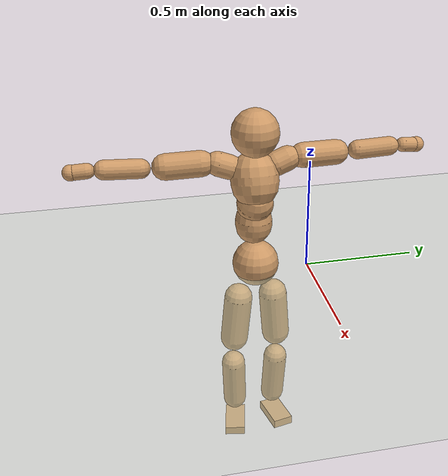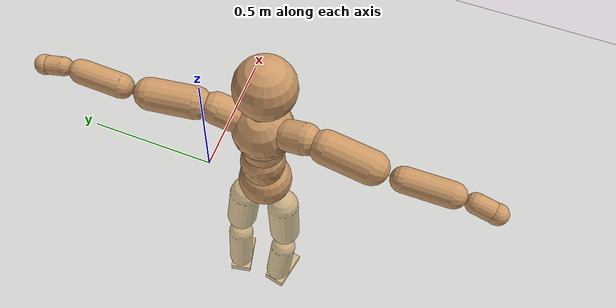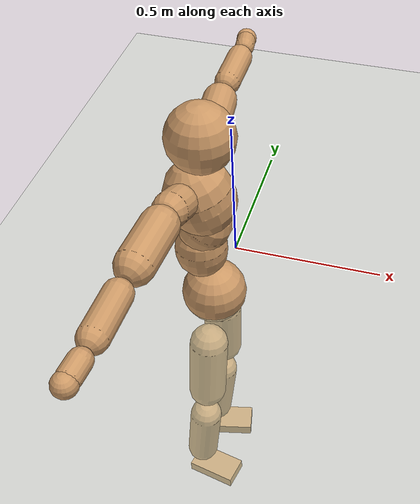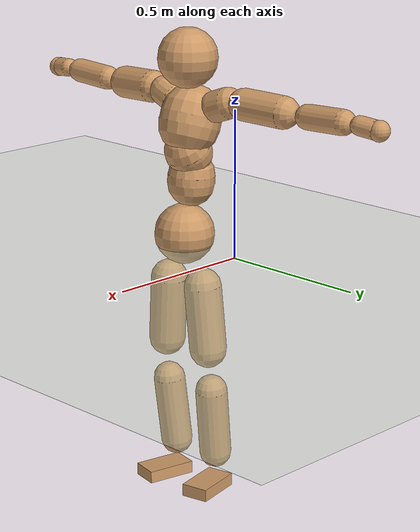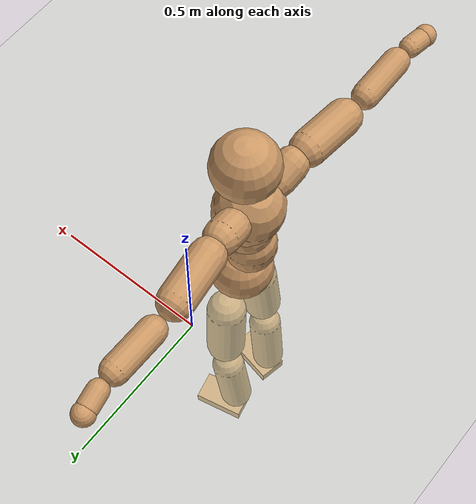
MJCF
<mujoco model="humanoid">
  <compiler coordinate="local"/>
  <default>
    <joint damping="0.0" armature="0.01" stiffness="0.0" limited="true"/>
    <geom conaffinity="1" condim="3" contype="7" margin="0.001" rgba="0.8 0.6 .4 1"/>
  </default>
  <asset>
    <texture type="skybox" builtin="gradient" rgb1=".4 .5 .6" rgb2="0 0 0" width="100" height="100"/>
    <texture builtin="flat" height="1278" mark="cross" markrgb="1 1 1" name="texgeom" random="0.01" rgb1="0.8 0.6 0.4" rgb2="0.8 0.6 0.4" type="cube" width="127"/>
    <texture builtin="checker" height="100" name="texplane" rgb1="0 0 0" rgb2="0.8 0.8 0.8" type="2d" width="100"/>
    <material name="MatPlane" reflectance="0.5" shininess="1" specular="1" texrepeat="60 60" texture="texplane"/>
    <material name="geom" texture="texgeom" texuniform="true"/>
  </asset>
  <worldbody>
    <light cutoff="100" diffuse="1 1 1" dir="-0 0 -1.3" directional="true" exponent="1" pos="0 0 1.3" specular=".1 .1 .1"/>
    <geom conaffinity="1" condim="3" name="floor" pos="0 0 0" rgba="0.8 0.9 0.8 1" size="100 100 .2" type="plane" material="MatPlane"/>
    <body name="Pelvis" pos="-0.0009 -0.2382 0.0384">
      <freejoint name="Pelvis"/>
      <geom type="sphere" contype="1" conaffinity="1" density="500" size="0.1036" pos="0.0000 0.0000 0.0000" name="Pelvis"/>
      <body name="L_Hip" pos="-0.0027 0.0761 -0.098">
        <joint name="L_Hip_x" type="hinge" pos="0 0 0" axis="1 0 0" stiffness="800" damping="80" armature="0.02" range="-180.0000 180.0000"/>
        <joint name="L_Hip_y" type="hinge" pos="0 0 0" axis="0 1 0" stiffness="800" damping="80" armature="0.02" range="-180.0000 180.0000"/>
        <joint name="L_Hip_z" type="hinge" pos="0 0 0" axis="0 0 1" stiffness="800" damping="80" armature="0.02" range="-180.0000 180.0000"/>
        <geom type="capsule" contype="1" conaffinity="1" density="500" fromto="-0.0028 0.0058 -0.0749 -0.0112 0.0233 -0.2994" size="0.0642" name="L_Hip"/>
        <body name="L_Knee" pos="-0.0141 0.0291 -0.3743">
          <joint name="L_Knee_x" type="hinge" pos="0 0 0" axis="1 0 0" stiffness="800" damping="80" armature="0.02" range="-180.0000 180.0000"/>
          <joint name="L_Knee_y" type="hinge" pos="0 0 0" axis="0 1 0" stiffness="800" damping="80" armature="0.02" range="-180.0000 180.0000"/>
          <joint name="L_Knee_z" type="hinge" pos="0 0 0" axis="0 0 1" stiffness="800" damping="80" armature="0.02" range="-180.0000 180.0000"/>
          <geom type="capsule" contype="1" conaffinity="1" density="500" fromto="-0.0094 -0.0024 -0.0801 -0.0377 -0.0097 -0.3205" size="0.0554" name="L_Knee"/>
          <body name="L_Ankle" pos="-0.0471 -0.0121 -0.4007">
            <joint name="L_Ankle_x" type="hinge" pos="0 0 0" axis="1 0 0" stiffness="800" damping="80" armature="0.02" range="-180.0000 180.0000"/>
            <joint name="L_Ankle_y" type="hinge" pos="0 0 0" axis="0 1 0" stiffness="800" damping="80" armature="0.02" range="-180.0000 180.0000"/>
            <joint name="L_Ankle_z" type="hinge" pos="0 0 0" axis="0 0 1" stiffness="800" damping="80" armature="0.02" range="-180.0000 180.0000"/>
            <geom type="box" contype="1" conaffinity="1" density="500" pos="0.0594 0.0127 -0.0288" size="0.0848 0.0481 0.0216" quat="0.9945 0.0000 0.0000 0.1050" name="L_Ankle"/>
            <body name="L_Toe" pos="0.1189 0.0254 -0.0577">
              <joint name="L_Toe_x" type="hinge" pos="0 0 0" axis="1 0 0" stiffness="500" damping="50" armature="0.02" range="-180.0000 180.0000"/>
              <joint name="L_Toe_y" type="hinge" pos="0 0 0" axis="0 1 0" stiffness="500" damping="50" armature="0.02" range="-180.0000 180.0000"/>
              <joint name="L_Toe_z" type="hinge" pos="0 0 0" axis="0 0 1" stiffness="500" damping="50" armature="0.02" range="-180.0000 180.0000"/>
              <geom type="box" contype="1" conaffinity="1" density="500" pos="0.0000 0.0000 0.0284" size="0.001 0.0024 0.0011" quat="0.9938 0.0000 0.0000 0.1111" name="L_Toe"/>
            </body>
          </body>
        </body>
      </body>
      <body name="R_Hip" pos="0.0006 -0.0728 -0.0986">
        <joint name="R_Hip_x" type="hinge" pos="0 0 0" axis="1 0 0" stiffness="800" damping="80" armature="0.02" range="-180.0000 180.0000"/>
        <joint name="R_Hip_y" type="hinge" pos="0 0 0" axis="0 1 0" stiffness="800" damping="80" armature="0.02" range="-180.0000 180.0000"/>
        <joint name="R_Hip_z" type="hinge" pos="0 0 0" axis="0 0 1" stiffness="800" damping="80" armature="0.02" range="-180.0000 180.0000"/>
        <geom type="capsule" contype="1" conaffinity="1" density="500" fromto="-0.0032 -0.0072 -0.0760 -0.0127 -0.0286 -0.3042" size="0.0634" name="R_Hip"/>
        <body name="R_Knee" pos="-0.0159 -0.0358 -0.3802">
          <joint name="R_Knee_x" type="hinge" pos="0 0 0" axis="1 0 0" stiffness="800" damping="80" armature="0.02" range="-180.0000 180.0000"/>
          <joint name="R_Knee_y" type="hinge" pos="0 0 0" axis="0 1 0" stiffness="800" damping="80" armature="0.02" range="-180.0000 180.0000"/>
          <joint name="R_Knee_z" type="hinge" pos="0 0 0" axis="0 0 1" stiffness="800" damping="80" armature="0.02" range="-180.0000 180.0000"/>
          <geom type="capsule" contype="1" conaffinity="1" density="500" fromto="-0.0092 0.0028 -0.0803 -0.0366 0.0113 -0.3210" size="0.0555" name="R_Knee"/>
          <body name="R_Ankle" pos="-0.0458 0.0142 -0.4013">
            <joint name="R_Ankle_x" type="hinge" pos="0 0 0" axis="1 0 0" stiffness="800" damping="80" armature="0.02" range="-180.0000 180.0000"/>
            <joint name="R_Ankle_y" type="hinge" pos="0 0 0" axis="0 1 0" stiffness="800" damping="80" armature="0.02" range="-180.0000 180.0000"/>
            <joint name="R_Ankle_z" type="hinge" pos="0 0 0" axis="0 0 1" stiffness="800" damping="80" armature="0.02" range="-180.0000 180.0000"/>
            <geom type="box" contype="1" conaffinity="1" density="500" pos="0.0614 -0.0125 -0.0245" size="0.0866 0.0479 0.0212" quat="0.9949 0.0000 0.0000 -0.1004" name="R_Ankle"/>
            <body name="R_Toe" pos="0.1227 -0.025 -0.049">
              <joint name="R_Toe_x" type="hinge" pos="0 0 0" axis="1 0 0" stiffness="500" damping="50" armature="0.02" range="-180.0000 180.0000"/>
              <joint name="R_Toe_y" type="hinge" pos="0 0 0" axis="0 1 0" stiffness="500" damping="50" armature="0.02" range="-180.0000 180.0000"/>
              <joint name="R_Toe_z" type="hinge" pos="0 0 0" axis="0 0 1" stiffness="500" damping="50" armature="0.02" range="-180.0000 180.0000"/>
              <geom type="box" contype="1" conaffinity="1" density="500" pos="0.0000 0.0000 0.0266" size="0.0009 0.0024 0.0012" quat="0.9958 0.0000 0.0000 -0.0912" name="R_Toe"/>
            </body>
          </body>
        </body>
      </body>
      <body name="Torso" pos="-0.0311 -0.0029 0.115">
        <joint name="Torso_x" type="hinge" pos="0 0 0" axis="1 0 0" stiffness="1000" damping="100" armature="0.02" range="-180.0000 180.0000"/>
        <joint name="Torso_y" type="hinge" pos="0 0 0" axis="0 1 0" stiffness="1000" damping="100" armature="0.02" range="-180.0000 180.0000"/>
        <joint name="Torso_z" type="hinge" pos="0 0 0" axis="0 0 1" stiffness="1000" damping="100" armature="0.02" range="-180.0000 180.0000"/>
        <geom type="capsule" contype="1" conaffinity="1" density="500" fromto="-0.0026 0.0025 0.0840 -0.0017 0.0017 0.0560" size="0.081" name="Torso"/>
        <body name="Spine" pos="-0.0043 0.0041 0.1399">
          <joint name="Spine_x" type="hinge" pos="0 0 0" axis="1 0 0" stiffness="1000" damping="100" armature="0.02" range="-180.0000 180.0000"/>
          <joint name="Spine_y" type="hinge" pos="0 0 0" axis="0 1 0" stiffness="1000" damping="100" armature="0.02" range="-180.0000 180.0000"/>
          <joint name="Spine_z" type="hinge" pos="0 0 0" axis="0 0 1" stiffness="1000" damping="100" armature="0.02" range="-180.0000 180.0000"/>
          <geom type="capsule" contype="1" conaffinity="1" density="500" fromto="0.0213 0.0012 0.0323 0.0142 0.0008 0.0215" size="0.0805" name="Spine"/>
          <body name="Chest" pos="0.0354 0.002 0.0539">
            <joint name="Chest_x" type="hinge" pos="0 0 0" axis="1 0 0" stiffness="1000" damping="100" armature="0.02" range="-180.0000 180.0000"/>
            <joint name="Chest_y" type="hinge" pos="0 0 0" axis="0 1 0" stiffness="1000" damping="100" armature="0.02" range="-180.0000 180.0000"/>
            <joint name="Chest_z" type="hinge" pos="0 0 0" axis="0 0 1" stiffness="1000" damping="100" armature="0.02" range="-180.0000 180.0000"/>
            <geom type="capsule" contype="1" conaffinity="1" density="500" fromto="-0.0316 -0.0005 0.0976 -0.0211 -0.0004 0.0650" size="0.1046" name="Chest"/>
            <body name="Neck" pos="-0.0642 -0.0015 0.2291">
              <joint name="Neck_x" type="hinge" pos="0 0 0" axis="1 0 0" stiffness="500" damping="50" armature="0.02" range="-180.0000 180.0000"/>
              <joint name="Neck_y" type="hinge" pos="0 0 0" axis="0 1 0" stiffness="500" damping="50" armature="0.02" range="-180.0000 180.0000"/>
              <joint name="Neck_z" type="hinge" pos="0 0 0" axis="0 0 1" stiffness="500" damping="50" armature="0.02" range="-180.0000 180.0000"/>
              <geom type="capsule" contype="1" conaffinity="1" density="500" fromto="0.0099 0.0004 0.0124 0.0398 0.0015 0.0497" size="0.0436" name="Neck"/>
              <body name="Head" pos="0.0497 0.0018 0.0621">
                <joint name="Head_x" type="hinge" pos="0 0 0" axis="1 0 0" stiffness="500" damping="50" armature="0.02" range="-180.0000 180.0000"/>
                <joint name="Head_y" type="hinge" pos="0 0 0" axis="0 1 0" stiffness="500" damping="50" armature="0.02" range="-180.0000 180.0000"/>
                <joint name="Head_z" type="hinge" pos="0 0 0" axis="0 0 1" stiffness="500" damping="50" armature="0.02" range="-180.0000 180.0000"/>
                <geom type="sphere" contype="1" conaffinity="1" density="500" size="0.1021" pos="0.0000 0.0000 0.0000" name="Head"/>
              </body>
            </body>
            <body name="L_Thorax" pos="-0.0446 0.0797 0.1303">
              <joint name="L_Thorax_x" type="hinge" pos="0 0 0" axis="1 0 0" stiffness="500" damping="50" armature="0.02" range="-180.0000 180.0000"/>
              <joint name="L_Thorax_y" type="hinge" pos="0 0 0" axis="0 1 0" stiffness="500" damping="50" armature="0.02" range="-180.0000 180.0000"/>
              <joint name="L_Thorax_z" type="hinge" pos="0 0 0" axis="0 0 1" stiffness="500" damping="50" armature="0.02" range="-180.0000 180.0000"/>
              <geom type="capsule" contype="1" conaffinity="1" density="500" fromto="-0.0017 0.0173 0.0061 -0.0070 0.0693 0.0245" size="0.0538" name="L_Thorax"/>
              <body name="L_Shoulder" pos="-0.0087 0.0866 0.0307">
                <joint name="L_Shoulder_x" type="hinge" pos="0 0 0" axis="1 0 0" stiffness="500" damping="50" armature="0.02" range="-720.0000 720.0000"/>
                <joint name="L_Shoulder_y" type="hinge" pos="0 0 0" axis="0 1 0" stiffness="500" damping="50" armature="0.02" range="-720.0000 720.0000"/>
                <joint name="L_Shoulder_z" type="hinge" pos="0 0 0" axis="0 0 1" stiffness="500" damping="50" armature="0.02" range="-720.0000 720.0000"/>
                <geom type="capsule" contype="1" conaffinity="1" density="500" fromto="-0.0061 0.0513 -0.0018 -0.0243 0.2051 -0.0073" size="0.0548" name="L_Shoulder"/>
                <body name="L_Elbow" pos="-0.0304 0.2563 -0.0092">
                  <joint name="L_Elbow_x" type="hinge" pos="0 0 0" axis="1 0 0" stiffness="500" damping="50" armature="0.02" range="-720.0000 720.0000"/>
                  <joint name="L_Elbow_y" type="hinge" pos="0 0 0" axis="0 1 0" stiffness="500" damping="50" armature="0.02" range="-720.0000 720.0000"/>
                  <joint name="L_Elbow_z" type="hinge" pos="0 0 0" axis="0 0 1" stiffness="500" damping="50" armature="0.02" range="-720.0000 720.0000"/>
                  <geom type="capsule" contype="1" conaffinity="1" density="500" fromto="0.0003 0.0487 0.0018 0.0011 0.1948 0.0073" size="0.0417" name="L_Elbow"/>
                  <body name="L_Wrist" pos="0.0014 0.2436 0.0091">
                    <joint name="L_Wrist_x" type="hinge" pos="0 0 0" axis="1 0 0" stiffness="300" damping="30" armature="0.02" range="-180.0000 180.0000"/>
                    <joint name="L_Wrist_y" type="hinge" pos="0 0 0" axis="0 1 0" stiffness="300" damping="30" armature="0.02" range="-180.0000 180.0000"/>
                    <joint name="L_Wrist_z" type="hinge" pos="0 0 0" axis="0 0 1" stiffness="300" damping="30" armature="0.02" range="-180.0000 180.0000"/>
                    <geom type="capsule" contype="1" conaffinity="1" density="500" fromto="-0.0028 0.0169 -0.0020 -0.0111 0.0675 -0.0080" size="0.0321" name="L_Wrist"/>
                    <body name="L_Hand" pos="-0.0139 0.0844 -0.01">
                      <joint name="L_Hand_x" type="hinge" pos="0 0 0" axis="1 0 0" stiffness="300" damping="30" armature="0.02" range="-180.0000 180.0000"/>
                      <joint name="L_Hand_y" type="hinge" pos="0 0 0" axis="0 1 0" stiffness="300" damping="30" armature="0.02" range="-180.0000 180.0000"/>
                      <joint name="L_Hand_z" type="hinge" pos="0 0 0" axis="0 0 1" stiffness="300" damping="30" armature="0.02" range="-180.0000 180.0000"/>
                      <geom type="sphere" contype="1" conaffinity="1" density="500" size="0.0342" pos="0.0000 0.0000 0.0000" name="L_Hand"/>
                    </body>
                  </body>
                </body>
              </body>
            </body>
            <body name="R_Thorax" pos="-0.0495 -0.0808 0.1284">
              <joint name="R_Thorax_x" type="hinge" pos="0 0 0" axis="1 0 0" stiffness="500" damping="50" armature="0.02" range="-180.0000 180.0000"/>
              <joint name="R_Thorax_y" type="hinge" pos="0 0 0" axis="0 1 0" stiffness="500" damping="50" armature="0.02" range="-180.0000 180.0000"/>
              <joint name="R_Thorax_z" type="hinge" pos="0 0 0" axis="0 0 1" stiffness="500" damping="50" armature="0.02" range="-180.0000 180.0000"/>
              <geom type="capsule" contype="1" conaffinity="1" density="500" fromto="-0.0018 -0.0181 0.0063 -0.0073 -0.0724 0.0251" size="0.0529" name="R_Thorax"/>
              <body name="R_Shoulder" pos="-0.0092 -0.0905 0.0314">
                <joint name="R_Shoulder_x" type="hinge" pos="0 0 0" axis="1 0 0" stiffness="500" damping="50" armature="0.02" range="-720.0000 720.0000"/>
                <joint name="R_Shoulder_y" type="hinge" pos="0 0 0" axis="0 1 0" stiffness="500" damping="50" armature="0.02" range="-720.0000 720.0000"/>
                <joint name="R_Shoulder_z" type="hinge" pos="0 0 0" axis="0 0 1" stiffness="500" damping="50" armature="0.02" range="-720.0000 720.0000"/>
                <geom type="capsule" contype="1" conaffinity="1" density="500" fromto="-0.0045 -0.0502 -0.0024 -0.0179 -0.2009 -0.0096" size="0.0561" name="R_Shoulder"/>
                <body name="R_Elbow" pos="-0.0224 -0.2511 -0.012">
                  <joint name="R_Elbow_x" type="hinge" pos="0 0 0" axis="1 0 0" stiffness="500" damping="50" armature="0.02" range="-720.0000 720.0000"/>
                  <joint name="R_Elbow_y" type="hinge" pos="0 0 0" axis="0 1 0" stiffness="500" damping="50" armature="0.02" range="-720.0000 720.0000"/>
                  <joint name="R_Elbow_z" type="hinge" pos="0 0 0" axis="0 0 1" stiffness="500" damping="50" armature="0.02" range="-720.0000 720.0000"/>
                  <geom type="capsule" contype="1" conaffinity="1" density="500" fromto="-0.0003 -0.0501 0.0023 -0.0013 -0.2005 0.0092" size="0.0418" name="R_Elbow"/>
                  <body name="R_Wrist" pos="-0.0016 -0.2506 0.0115">
                    <joint name="R_Wrist_x" type="hinge" pos="0 0 0" axis="1 0 0" stiffness="300" damping="30" armature="0.02" range="-180.0000 180.0000"/>
                    <joint name="R_Wrist_y" type="hinge" pos="0 0 0" axis="0 1 0" stiffness="300" damping="30" armature="0.02" range="-180.0000 180.0000"/>
                    <joint name="R_Wrist_z" type="hinge" pos="0 0 0" axis="0 0 1" stiffness="300" damping="30" armature="0.02" range="-180.0000 180.0000"/>
                    <geom type="capsule" contype="1" conaffinity="1" density="500" fromto="-0.0022 -0.0169 -0.0015 -0.0088 -0.0676 -0.0059" size="0.0326" name="R_Wrist"/>
                    <body name="R_Hand" pos="-0.011 -0.0845 -0.0074">
                      <joint name="R_Hand_x" type="hinge" pos="0 0 0" axis="1 0 0" stiffness="300" damping="30" armature="0.02" range="-180.0000 180.0000"/>
                      <joint name="R_Hand_y" type="hinge" pos="0 0 0" axis="0 1 0" stiffness="300" damping="30" armature="0.02" range="-180.0000 180.0000"/>
                      <joint name="R_Hand_z" type="hinge" pos="0 0 0" axis="0 0 1" stiffness="300" damping="30" armature="0.02" range="-180.0000 180.0000"/>
                      <geom type="sphere" contype="1" conaffinity="1" density="500" size="0.0341" pos="0.0000 0.0000 0.0000" name="R_Hand"/>
                    </body>
                  </body>
                </body>
              </body>
            </body>
          </body>
        </body>
      </body>
    </body>
  </worldbody>
  <actuator>
    <motor name="L_Hip_x" joint="L_Hip_x" gear="500"/>
    <motor name="L_Hip_y" joint="L_Hip_y" gear="500"/>
    <motor name="L_Hip_z" joint="L_Hip_z" gear="500"/>
    <motor name="L_Knee_x" joint="L_Knee_x" gear="500"/>
    <motor name="L_Knee_y" joint="L_Knee_y" gear="500"/>
    <motor name="L_Knee_z" joint="L_Knee_z" gear="500"/>
    <motor name="L_Ankle_x" joint="L_Ankle_x" gear="500"/>
    <motor name="L_Ankle_y" joint="L_Ankle_y" gear="500"/>
    <motor name="L_Ankle_z" joint="L_Ankle_z" gear="500"/>
    <motor name="L_Toe_x" joint="L_Toe_x" gear="500"/>
    <motor name="L_Toe_y" joint="L_Toe_y" gear="500"/>
    <motor name="L_Toe_z" joint="L_Toe_z" gear="500"/>
    <motor name="R_Hip_x" joint="R_Hip_x" gear="500"/>
    <motor name="R_Hip_y" joint="R_Hip_y" gear="500"/>
    <motor name="R_Hip_z" joint="R_Hip_z" gear="500"/>
    <motor name="R_Knee_x" joint="R_Knee_x" gear="500"/>
    <motor name="R_Knee_y" joint="R_Knee_y" gear="500"/>
    <motor name="R_Knee_z" joint="R_Knee_z" gear="500"/>
    <motor name="R_Ankle_x" joint="R_Ankle_x" gear="500"/>
    <motor name="R_Ankle_y" joint="R_Ankle_y" gear="500"/>
    <motor name="R_Ankle_z" joint="R_Ankle_z" gear="500"/>
    <motor name="R_Toe_x" joint="R_Toe_x" gear="500"/>
    <motor name="R_Toe_y" joint="R_Toe_y" gear="500"/>
    <motor name="R_Toe_z" joint="R_Toe_z" gear="500"/>
    <motor name="Torso_x" joint="Torso_x" gear="500"/>
    <motor name="Torso_y" joint="Torso_y" gear="500"/>
    <motor name="Torso_z" joint="Torso_z" gear="500"/>
    <motor name="Spine_x" joint="Spine_x" gear="500"/>
    <motor name="Spine_y" joint="Spine_y" gear="500"/>
    <motor name="Spine_z" joint="Spine_z" gear="500"/>
    <motor name="Chest_x" joint="Chest_x" gear="500"/>
    <motor name="Chest_y" joint="Chest_y" gear="500"/>
    <motor name="Chest_z" joint="Chest_z" gear="500"/>
    <motor name="Neck_x" joint="Neck_x" gear="500"/>
    <motor name="Neck_y" joint="Neck_y" gear="500"/>
    <motor name="Neck_z" joint="Neck_z" gear="500"/>
    <motor name="Head_x" joint="Head_x" gear="500"/>
    <motor name="Head_y" joint="Head_y" gear="500"/>
    <motor name="Head_z" joint="Head_z" gear="500"/>
    <motor name="L_Thorax_x" joint="L_Thorax_x" gear="500"/>
    <motor name="L_Thorax_y" joint="L_Thorax_y" gear="500"/>
    <motor name="L_Thorax_z" joint="L_Thorax_z" gear="500"/>
    <motor name="L_Shoulder_x" joint="L_Shoulder_x" gear="500"/>
    <motor name="L_Shoulder_y" joint="L_Shoulder_y" gear="500"/>
    <motor name="L_Shoulder_z" joint="L_Shoulder_z" gear="500"/>
    <motor name="L_Elbow_x" joint="L_Elbow_x" gear="500"/>
    <motor name="L_Elbow_y" joint="L_Elbow_y" gear="500"/>
    <motor name="L_Elbow_z" joint="L_Elbow_z" gear="500"/>
    <motor name="L_Wrist_x" joint="L_Wrist_x" gear="500"/>
    <motor name="L_Wrist_y" joint="L_Wrist_y" gear="500"/>
    <motor name="L_Wrist_z" joint="L_Wrist_z" gear="500"/>
    <motor name="L_Hand_x" joint="L_Hand_x" gear="500"/>
    <motor name="L_Hand_y" joint="L_Hand_y" gear="500"/>
    <motor name="L_Hand_z" joint="L_Hand_z" gear="500"/>
    <motor name="R_Thorax_x" joint="R_Thorax_x" gear="500"/>
    <motor name="R_Thorax_y" joint="R_Thorax_y" gear="500"/>
    <motor name="R_Thorax_z" joint="R_Thorax_z" gear="500"/>
    <motor name="R_Shoulder_x" joint="R_Shoulder_x" gear="500"/>
    <motor name="R_Shoulder_y" joint="R_Shoulder_y" gear="500"/>
    <motor name="R_Shoulder_z" joint="R_Shoulder_z" gear="500"/>
    <motor name="R_Elbow_x" joint="R_Elbow_x" gear="500"/>
    <motor name="R_Elbow_y" joint="R_Elbow_y" gear="500"/>
    <motor name="R_Elbow_z" joint="R_Elbow_z" gear="500"/>
    <motor name="R_Wrist_x" joint="R_Wrist_x" gear="500"/>
    <motor name="R_Wrist_y" joint="R_Wrist_y" gear="500"/>
    <motor name="R_Wrist_z" joint="R_Wrist_z" gear="500"/>
    <motor name="R_Hand_x" joint="R_Hand_x" gear="500"/>
    <motor name="R_Hand_y" joint="R_Hand_y" gear="500"/>
    <motor name="R_Hand_z" joint="R_Hand_z" gear="500"/>
  </actuator>
  <contact>
    <exclude body1="Torso" body2="Chest"/>
    <exclude body1="Head" body2="Chest"/>
    <exclude body1="R_Knee" body2="R_Toe"/>
    <exclude body1="R_Knee" body2="L_Ankle"/>
    <exclude body1="R_Knee" body2="L_Toe"/>
    <exclude body1="L_Knee" body2="L_Toe"/>
    <exclude body1="L_Knee" body2="R_Ankle"/>
    <exclude body1="L_Knee" body2="R_Toe"/>
    <exclude body1="L_Shoulder" body2="Chest"/>
    <exclude body1="R_Shoulder" body2="Chest"/>
  </contact>
  <sensor/>
  <size njmax="700" nconmax="700"/>
</mujoco>
